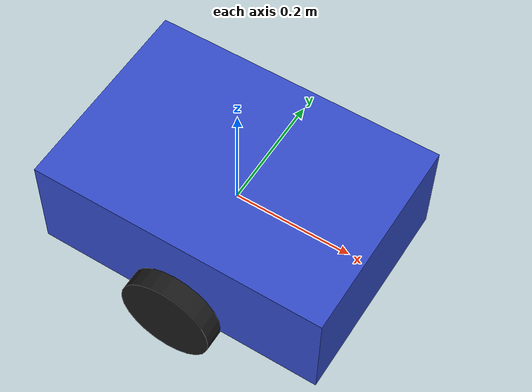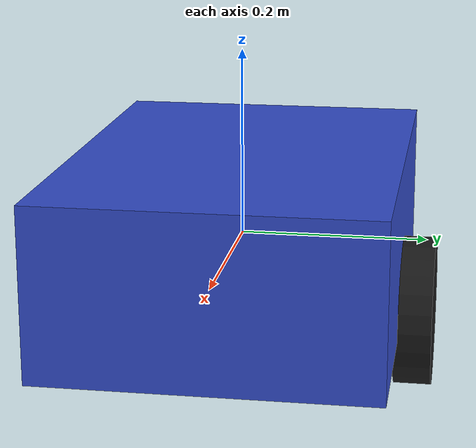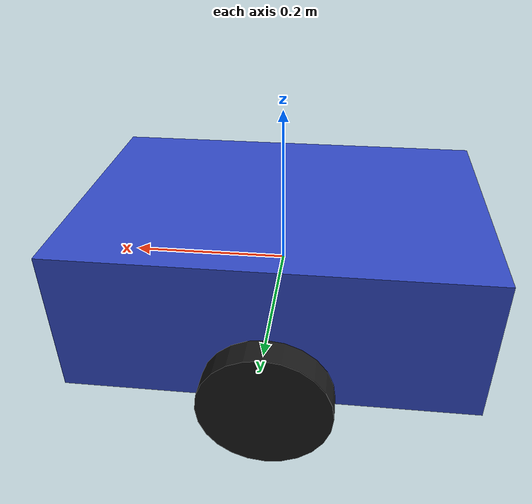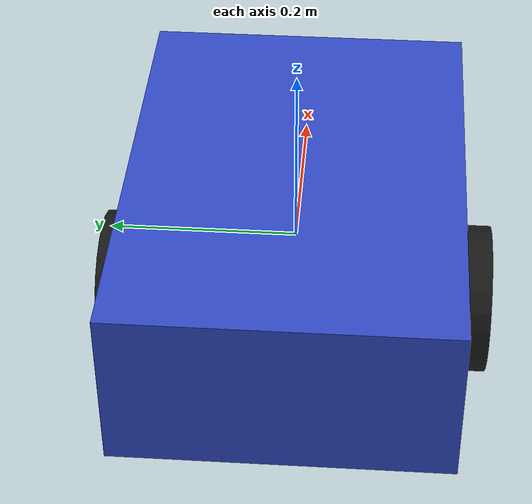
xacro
<?xml version="1.0"?>
<robot name="ugv" xmlns:xacro="http://www.ros.org/wiki/xacro">

  <!-- Root -->
  <link name="world"/>

  <!-- Base -->
  <link name="base_link">
    <inertial>
      <origin xyz="0 0 0" rpy="0 0 0"/>
      <mass value="8.0"/>
      <inertia ixx="0.25" ixy="0" ixz="0" iyy="0.35" iyz="0" izz="0.45"/>
    </inertial>

    <visual>
      <geometry>
        <box size="0.5 0.35 0.18"/>
      </geometry>
      <material name="blue">
        <color rgba="0.2 0.3 0.8 1.0"/>
      </material>
    </visual>

    <collision>
      <geometry>
        <box size="0.5 0.35 0.18"/>
      </geometry>
    </collision>
  </link>

  <!-- world -> base_link -->
  <joint name="world_to_base" type="fixed">
    <parent link="world"/>
    <child link="base_link"/>
    <origin xyz="0 0 0" rpy="0 0 0"/>
  </joint>

  <!-- Wheels (visual only in RViz; Gazebo will use SDF diff drive) -->
  <link name="left_wheel_link">
    <visual>
      <origin xyz="0 0 0" rpy="1.5708 0 0"/>
      <geometry>
        <cylinder radius="0.08" length="0.04"/>
      </geometry>
      <material name="black">
        <color rgba="0.1 0.1 0.1 1.0"/>
      </material>
    </visual>
  </link>

  <link name="right_wheel_link">
    <visual>
      <origin xyz="0 0 0" rpy="1.5708 0 0"/>
      <geometry>
        <cylinder radius="0.08" length="0.04"/>
      </geometry>
      <material name="black">
        <color rgba="0.1 0.1 0.1 1.0"/>
      </material>
    </visual>
  </link>

  <joint name="left_wheel_joint" type="continuous">
    <parent link="base_link"/>
    <child link="left_wheel_link"/>
    <origin xyz="0.0 0.19 -0.08" rpy="0 0 0"/>
    <axis xyz="0 1 0"/>
  </joint>

  <joint name="right_wheel_joint" type="continuous">
    <parent link="base_link"/>
    <child link="right_wheel_link"/>
    <origin xyz="0.0 -0.19 -0.08" rpy="0 0 0"/>
    <axis xyz="0 1 0"/>
  </joint>

</robot>
